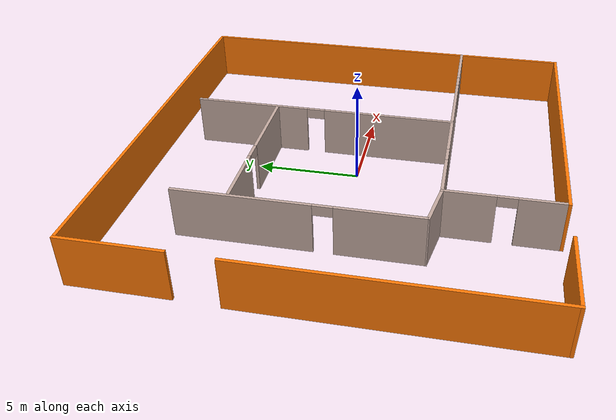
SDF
<?xml version='1.0'?>
<sdf version='1.7'>
  <model name='mod2'>
    <pose>-0.0075 0.254293 0 0 -0 0</pose>
    <link name='Wall_10'>
      <collision name='Wall_10_Collision'>
        <geometry>
          <box>
            <size>20.25 0.15 2.5</size>
          </box>
        </geometry>
        <pose>0 0 1.25 0 -0 0</pose>
      </collision>
      <visual name='Wall_10_Visual'>
        <pose>0 0 1.25 0 -0 0</pose>
        <geometry>
          <box>
            <size>20.25 0.15 2.5</size>
          </box>
        </geometry>
        <material>
          <script>
            <uri>file://media/materials/scripts/gazebo.material</uri>
            <name>Gazebo/Grey</name>
          </script>
          <ambient>0.996078 0.47451 0.0196078 1</ambient>
        </material>
        <meta>
          <layer>0</layer>
        </meta>
      </visual>
      <pose>9.95606 0.021298 0 0 -0 -1.5708</pose>
    </link>
    <link name='Wall_11'>
      <collision name='Wall_11_Collision'>
        <geometry>
          <box>
            <size>14 0.15 2.5</size>
          </box>
        </geometry>
        <pose>0 0 1.25 0 -0 0</pose>
      </collision>
      <visual name='Wall_11_Visual'>
        <pose>0 0 1.25 0 -0 0</pose>
        <geometry>
          <box>
            <size>14 0.15 2.5</size>
          </box>
        </geometry>
        <material>
          <script>
            <uri>file://media/materials/scripts/gazebo.material</uri>
            <name>Gazebo/Grey</name>
          </script>
          <ambient>0.996078 0.47451 0.0196078 1</ambient>
        </material>
        <meta>
          <layer>0</layer>
        </meta>
      </visual>
      <pose>3.03106 -10.0287 0 0 -0 3.14159</pose>
    </link>
    <link name='Wall_12'>
      <pose>-3.89394 -7.3537 0 0 -0 1.5708</pose>
      <visual name='Wall_12_Visual_0'>
        <pose>-1.65432 0 1.25 0 -0 0</pose>
        <geometry>
          <box>
            <size>2.19135 0.15 2.5</size>
          </box>
        </geometry>
        <material>
          <script>
            <uri>file://media/materials/scripts/gazebo.material</uri>
            <name>Gazebo/Grey</name>
          </script>
          <ambient>0.760784 0.662745 0.627451 1</ambient>
        </material>
        <meta>
          <layer>0</layer>
        </meta>
      </visual>
      <collision name='Wall_12_Collision_0'>
        <geometry>
          <box>
            <size>2.19135 0.15 2.5</size>
          </box>
        </geometry>
        <pose>-1.65432 0 1.25 0 -0 0</pose>
      </collision>
      <visual name='Wall_12_Visual_1'>
        <pose>1.54568 0 1.25 0 -0 0</pose>
        <geometry>
          <box>
            <size>2.40865 0.15 2.5</size>
          </box>
        </geometry>
        <material>
          <script>
            <uri>file://media/materials/scripts/gazebo.material</uri>
            <name>Gazebo/Grey</name>
          </script>
          <ambient>0.760784 0.662745 0.627451 1</ambient>
        </material>
        <meta>
          <layer>0</layer>
        </meta>
      </visual>
      <collision name='Wall_12_Collision_1'>
        <geometry>
          <box>
            <size>2.40865 0.15 2.5</size>
          </box>
        </geometry>
        <pose>1.54568 0 1.25 0 -0 0</pose>
      </collision>
      <visual name='Wall_12_Visual_2'>
        <pose>-0.108648 0 2.25 0 -0 0</pose>
        <geometry>
          <box>
            <size>0.9 0.15 0.5</size>
          </box>
        </geometry>
        <material>
          <script>
            <uri>file://media/materials/scripts/gazebo.material</uri>
            <name>Gazebo/Grey</name>
          </script>
          <ambient>0.760784 0.662745 0.627451 1</ambient>
        </material>
        <meta>
          <layer>0</layer>
        </meta>
      </visual>
      <collision name='Wall_12_Collision_2'>
        <geometry>
          <box>
            <size>0.9 0.15 0.5</size>
          </box>
        </geometry>
        <pose>-0.108648 0 2.25 0 -0 0</pose>
      </collision>
    </link>
    <link name='Wall_13'>
      <pose>3.03106 -4.6787 0 0 -0 0</pose>
      <visual name='Wall_13_Visual_0'>
        <pose>-5.74447 0 1.25 0 -0 0</pose>
        <geometry>
          <box>
            <size>2.51107 0.15 2.5</size>
          </box>
        </geometry>
        <material>
          <script>
            <uri>file://media/materials/scripts/gazebo.material</uri>
            <name>Gazebo/Grey</name>
          </script>
          <ambient>0.760784 0.662745 0.627451 1</ambient>
        </material>
        <meta>
          <layer>0</layer>
        </meta>
      </visual>
      <collision name='Wall_13_Collision_0'>
        <geometry>
          <box>
            <size>2.51107 0.15 2.5</size>
          </box>
        </geometry>
        <pose>-5.74447 0 1.25 0 -0 0</pose>
      </collision>
      <visual name='Wall_13_Visual_1'>
        <pose>-0.270495 0 1.25 0 -0 0</pose>
        <geometry>
          <box>
            <size>6.63687 0.15 2.5</size>
          </box>
        </geometry>
        <material>
          <script>
            <uri>file://media/materials/scripts/gazebo.material</uri>
            <name>Gazebo/Grey</name>
          </script>
          <ambient>0.760784 0.662745 0.627451 1</ambient>
        </material>
        <meta>
          <layer>0</layer>
        </meta>
      </visual>
      <collision name='Wall_13_Collision_1'>
        <geometry>
          <box>
            <size>6.63687 0.15 2.5</size>
          </box>
        </geometry>
        <pose>-0.270495 0 1.25 0 -0 0</pose>
      </collision>
      <visual name='Wall_13_Visual_2'>
        <pose>5.47397 0 1.25 0 -0 0</pose>
        <geometry>
          <box>
            <size>3.05206 0.15 2.5</size>
          </box>
        </geometry>
        <material>
          <script>
            <uri>file://media/materials/scripts/gazebo.material</uri>
            <name>Gazebo/Grey</name>
          </script>
          <ambient>0.760784 0.662745 0.627451 1</ambient>
        </material>
        <meta>
          <layer>0</layer>
        </meta>
      </visual>
      <collision name='Wall_13_Collision_2'>
        <geometry>
          <box>
            <size>3.05206 0.15 2.5</size>
          </box>
        </geometry>
        <pose>5.47397 0 1.25 0 -0 0</pose>
      </collision>
      <visual name='Wall_13_Visual_3'>
        <pose>-4.03893 0 2.25 0 -0 0</pose>
        <geometry>
          <box>
            <size>0.9 0.15 0.5</size>
          </box>
        </geometry>
        <material>
          <script>
            <uri>file://media/materials/scripts/gazebo.material</uri>
            <name>Gazebo/Grey</name>
          </script>
          <ambient>0.760784 0.662745 0.627451 1</ambient>
        </material>
        <meta>
          <layer>0</layer>
        </meta>
      </visual>
      <collision name='Wall_13_Collision_3'>
        <geometry>
          <box>
            <size>0.9 0.15 0.5</size>
          </box>
        </geometry>
        <pose>-4.03893 0 2.25 0 -0 0</pose>
      </collision>
      <visual name='Wall_13_Visual_4'>
        <pose>3.49794 0 2.25 0 -0 0</pose>
        <geometry>
          <box>
            <size>0.9 0.15 0.5</size>
          </box>
        </geometry>
        <material>
          <script>
            <uri>file://media/materials/scripts/gazebo.material</uri>
            <name>Gazebo/Grey</name>
          </script>
          <ambient>0.760784 0.662745 0.627451 1</ambient>
        </material>
        <meta>
          <layer>0</layer>
        </meta>
      </visual>
      <collision name='Wall_13_Collision_4'>
        <geometry>
          <box>
            <size>0.9 0.15 0.5</size>
          </box>
        </geometry>
        <pose>3.49794 0 2.25 0 -0 0</pose>
      </collision>
    </link>
    <link name='Wall_15'>
      <pose>2.01592 1.87908 0 0 -0 1.5708</pose>
      <visual name='Wall_15_Visual_0'>
        <pose>-3.34639 0 1.25 0 -0 0</pose>
        <geometry>
          <box>
            <size>6.55722 0.15 2.5</size>
          </box>
        </geometry>
        <material>
          <script>
            <uri>file://media/materials/scripts/gazebo.material</uri>
            <name>Gazebo/Grey</name>
          </script>
          <ambient>0.760784 0.662745 0.627451 1</ambient>
        </material>
        <meta>
          <layer>0</layer>
        </meta>
      </visual>
      <collision name='Wall_15_Collision_0'>
        <geometry>
          <box>
            <size>6.55722 0.15 2.5</size>
          </box>
        </geometry>
        <pose>-3.34639 0 1.25 0 -0 0</pose>
      </collision>
      <visual name='Wall_15_Visual_1'>
        <pose>3.72861 0 1.25 0 -0 0</pose>
        <geometry>
          <box>
            <size>5.79278 0.15 2.5</size>
          </box>
        </geometry>
        <material>
          <script>
            <uri>file://media/materials/scripts/gazebo.material</uri>
            <name>Gazebo/Grey</name>
          </script>
          <ambient>0.760784 0.662745 0.627451 1</ambient>
        </material>
        <meta>
          <layer>0</layer>
        </meta>
      </visual>
      <collision name='Wall_15_Collision_1'>
        <geometry>
          <box>
            <size>5.79278 0.15 2.5</size>
          </box>
        </geometry>
        <pose>3.72861 0 1.25 0 -0 0</pose>
      </collision>
      <visual name='Wall_15_Visual_2'>
        <pose>0.382219 0 2.25 0 -0 0</pose>
        <geometry>
          <box>
            <size>0.9 0.15 0.5</size>
          </box>
        </geometry>
        <material>
          <script>
            <uri>file://media/materials/scripts/gazebo.material</uri>
            <name>Gazebo/Grey</name>
          </script>
          <ambient>0.760784 0.662745 0.627451 1</ambient>
        </material>
        <meta>
          <layer>0</layer>
        </meta>
      </visual>
      <collision name='Wall_15_Collision_2'>
        <geometry>
          <box>
            <size>0.9 0.15 0.5</size>
          </box>
        </geometry>
        <pose>0.382219 0 2.25 0 -0 0</pose>
      </collision>
    </link>
    <link name='Wall_17'>
      <pose>-5.96306 1.27049 0 0 -0 -1.5708</pose>
      <visual name='Wall_17_Visual_0'>
        <pose>-2.46278 0 1.25 0 -0 0</pose>
        <geometry>
          <box>
            <size>6.32444 0.15 2.5</size>
          </box>
        </geometry>
        <material>
          <script>
            <uri>file://media/materials/scripts/gazebo.material</uri>
            <name>Gazebo/Grey</name>
          </script>
          <ambient>0.760784 0.662745 0.627451 1</ambient>
        </material>
        <meta>
          <layer>0</layer>
        </meta>
      </visual>
      <collision name='Wall_17_Collision_0'>
        <geometry>
          <box>
            <size>6.32444 0.15 2.5</size>
          </box>
        </geometry>
        <pose>-2.46278 0 1.25 0 -0 0</pose>
      </collision>
      <visual name='Wall_17_Visual_1'>
        <pose>3.61222 0 1.25 0 -0 0</pose>
        <geometry>
          <box>
            <size>4.02556 0.15 2.5</size>
          </box>
        </geometry>
        <material>
          <script>
            <uri>file://media/materials/scripts/gazebo.material</uri>
            <name>Gazebo/Grey</name>
          </script>
          <ambient>0.760784 0.662745 0.627451 1</ambient>
        </material>
        <meta>
          <layer>0</layer>
        </meta>
      </visual>
      <collision name='Wall_17_Collision_1'>
        <geometry>
          <box>
            <size>4.02556 0.15 2.5</size>
          </box>
        </geometry>
        <pose>3.61222 0 1.25 0 -0 0</pose>
      </collision>
      <visual name='Wall_17_Visual_2'>
        <pose>1.14944 0 2.25 0 -0 0</pose>
        <geometry>
          <box>
            <size>0.9 0.15 0.5</size>
          </box>
        </geometry>
        <material>
          <script>
            <uri>file://media/materials/scripts/gazebo.material</uri>
            <name>Gazebo/Grey</name>
          </script>
          <ambient>0.760784 0.662745 0.627451 1</ambient>
        </material>
        <meta>
          <layer>0</layer>
        </meta>
      </visual>
      <collision name='Wall_17_Collision_2'>
        <geometry>
          <box>
            <size>0.9 0.15 0.5</size>
          </box>
        </geometry>
        <pose>1.14944 0 2.25 0 -0 0</pose>
      </collision>
    </link>
    <link name='Wall_18'>
      <collision name='Wall_18_Collision'>
        <geometry>
          <box>
            <size>2.25302 0.15 2.5</size>
          </box>
        </geometry>
        <pose>0 0 1.25 0 -0 0</pose>
      </collision>
      <visual name='Wall_18_Visual'>
        <pose>0 0 1.25 0 -0 0</pose>
        <geometry>
          <box>
            <size>2.25302 0.15 2.5</size>
          </box>
        </geometry>
        <material>
          <script>
            <uri>file://media/materials/scripts/gazebo.material</uri>
            <name>Gazebo/Grey</name>
          </script>
          <ambient>0.760784 0.662745 0.627451 1</ambient>
        </material>
        <meta>
          <layer>0</layer>
        </meta>
      </visual>
      <pose>-4.9285 -4.49067 0 0 -0 -0.179787</pose>
    </link>
    <link name='Wall_22'>
      <pose>-1.94721 4.27395 0 0 -0 3.14159</pose>
      <visual name='Wall_22_Visual_0'>
        <pose>-2.00696 0 1.25 0 -0 0</pose>
        <geometry>
          <box>
            <size>3.98609 0.15 2.5</size>
          </box>
        </geometry>
        <material>
          <script>
            <uri>file://media/materials/scripts/gazebo.material</uri>
            <name>Gazebo/Grey</name>
          </script>
          <ambient>0.760784 0.662745 0.627451 1</ambient>
        </material>
        <meta>
          <layer>0</layer>
        </meta>
      </visual>
      <collision name='Wall_22_Collision_0'>
        <geometry>
          <box>
            <size>3.98609 0.15 2.5</size>
          </box>
        </geometry>
        <pose>-2.00696 0 1.25 0 -0 0</pose>
      </collision>
      <visual name='Wall_22_Visual_1'>
        <pose>2.44305 0 1.25 0 -0 0</pose>
        <geometry>
          <box>
            <size>3.11391 0.15 2.5</size>
          </box>
        </geometry>
        <material>
          <script>
            <uri>file://media/materials/scripts/gazebo.material</uri>
            <name>Gazebo/Grey</name>
          </script>
          <ambient>0.760784 0.662745 0.627451 1</ambient>
        </material>
        <meta>
          <layer>0</layer>
        </meta>
      </visual>
      <collision name='Wall_22_Collision_1'>
        <geometry>
          <box>
            <size>3.11391 0.15 2.5</size>
          </box>
        </geometry>
        <pose>2.44305 0 1.25 0 -0 0</pose>
      </collision>
      <visual name='Wall_22_Visual_2'>
        <pose>0.436089 0 2.25 0 -0 0</pose>
        <geometry>
          <box>
            <size>0.9 0.15 0.5</size>
          </box>
        </geometry>
        <material>
          <script>
            <uri>file://media/materials/scripts/gazebo.material</uri>
            <name>Gazebo/Grey</name>
          </script>
          <ambient>0.760784 0.662745 0.627451 1</ambient>
        </material>
        <meta>
          <layer>0</layer>
        </meta>
      </visual>
      <collision name='Wall_22_Collision_2'>
        <geometry>
          <box>
            <size>0.9 0.15 0.5</size>
          </box>
        </geometry>
        <pose>0.436089 0 2.25 0 -0 0</pose>
      </collision>
    </link>
    <link name='Wall_4'>
      <collision name='Wall_4_Collision'>
        <geometry>
          <box>
            <size>4 0.15 2.5</size>
          </box>
        </geometry>
        <pose>0 0 1.25 0 -0 0</pose>
      </collision>
      <visual name='Wall_4_Visual'>
        <pose>0 0 1.25 0 -0 0</pose>
        <geometry>
          <box>
            <size>4 0.15 2.5</size>
          </box>
        </geometry>
        <material>
          <script>
            <uri>file://media/materials/scripts/gazebo.material</uri>
            <name>Gazebo/Grey</name>
          </script>
          <ambient>0.996078 0.47451 0.0196078 1</ambient>
        </material>
        <meta>
          <layer>0</layer>
        </meta>
      </visual>
      <pose>-8.03106 -10.0713 0 0 -0 0</pose>
    </link>
    <link name='Wall_6'>
      <collision name='Wall_6_Collision'>
        <geometry>
          <box>
            <size>13.5 0.15 2.5</size>
          </box>
        </geometry>
        <pose>0 0 1.25 0 -0 0</pose>
      </collision>
      <visual name='Wall_6_Visual'>
        <pose>0 0 1.25 0 -0 0</pose>
        <geometry>
          <box>
            <size>13.5 0.15 2.5</size>
          </box>
        </geometry>
        <material>
          <script>
            <uri>file://media/materials/scripts/gazebo.material</uri>
            <name>Gazebo/Grey</name>
          </script>
          <ambient>0.996078 0.47451 0.0196078 1</ambient>
        </material>
        <meta>
          <layer>0</layer>
        </meta>
      </visual>
      <pose>-9.95606 -3.3963 0 0 -0 1.5708</pose>
    </link>
    <link name='Wall_8'>
      <collision name='Wall_8_Collision'>
        <geometry>
          <box>
            <size>4.75 0.15 2.5</size>
          </box>
        </geometry>
        <pose>0 0 1.25 0 -0 0</pose>
      </collision>
      <visual name='Wall_8_Visual'>
        <pose>0 0 1.25 0 -0 0</pose>
        <geometry>
          <box>
            <size>4.75 0.15 2.5</size>
          </box>
        </geometry>
        <material>
          <script>
            <uri>file://media/materials/scripts/gazebo.material</uri>
            <name>Gazebo/Grey</name>
          </script>
          <ambient>0.996078 0.47451 0.0196078 1</ambient>
        </material>
        <meta>
          <layer>0</layer>
        </meta>
      </visual>
      <pose>-9.89394 7.7713 0 0 -0 1.5708</pose>
    </link>
    <link name='Wall_9'>
      <collision name='Wall_9_Collision'>
        <geometry>
          <box>
            <size>20 0.15 2.5</size>
          </box>
        </geometry>
        <pose>0 0 1.25 0 -0 0</pose>
      </collision>
      <visual name='Wall_9_Visual'>
        <pose>0 0 1.25 0 -0 0</pose>
        <geometry>
          <box>
            <size>20 0.15 2.5</size>
          </box>
        </geometry>
        <material>
          <script>
            <uri>file://media/materials/scripts/gazebo.material</uri>
            <name>Gazebo/Grey</name>
          </script>
          <ambient>0.996078 0.47451 0.0196078 1</ambient>
        </material>
        <meta>
          <layer>0</layer>
        </meta>
      </visual>
      <pose>0.031062 10.0713 0 0 -0 0</pose>
    </link>
    <static>1</static>
  </model>
</sdf>
